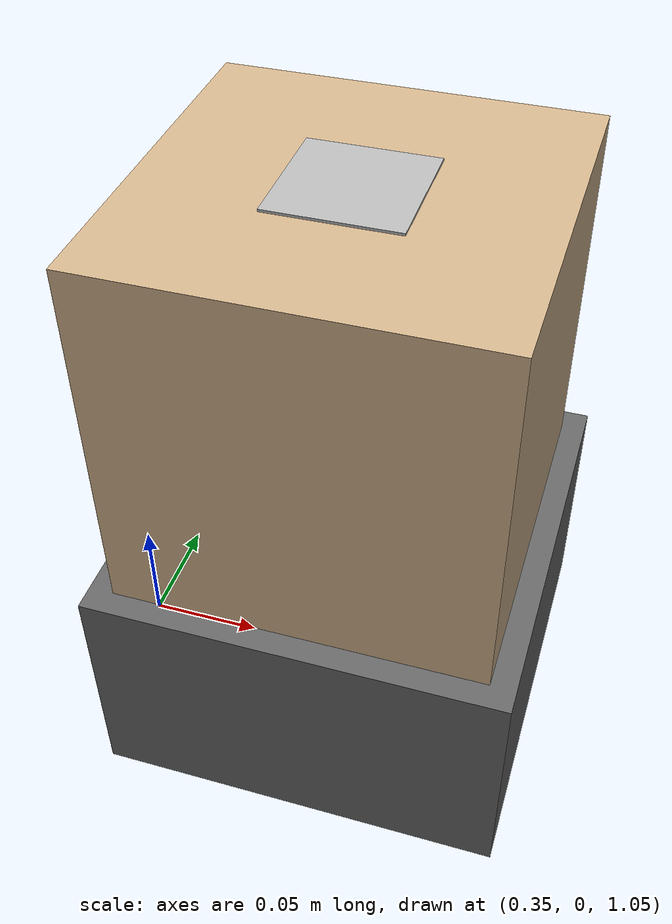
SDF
<?xml version="1.0" ?>
<sdf version="1.4">
  <!-- We use a custom world for the rrbot so that the camera angle is launched correctly -->

  <world name="default">
    <!-- 제어 주기와 물리 시간을 1:1로 유지한다. 무제한 RTF에서는 외부 PD 명령이
         시뮬레이션 시간 기준으로 성기게 도착해 속도 피드백이 지연된다. -->
    <physics type="ode">
      <max_step_size>0.001</max_step_size>
      <real_time_update_rate>1000</real_time_update_rate>
    </physics>
    <include>
      <uri>model://ground_plane</uri>
    </include>

    <!-- Global light source -->
    <include>
      <uri>model://sun</uri>
    </include>

    <!-- Graspable pick object: 15x15x15cm box with a 5cm ArUco id=26 marker facing the head
         camera. dynamic(model.sdf) - held by real friction/impedance grasp, not kinematic attach. -->
    <include>
      <uri>model://aruco_box_26</uri>
      <name>aruco_box_26</name>
      <pose>0.45 0 1.225 0 0 0</pose>
    </include>

    <!-- pick 지점 전용 소형 받침대: 물체 발판(15x15cm)보다 살짝 큰 17x17cm, 상판 z=1.15(기존 테이블
         높이와 동일). 파지 전(LOCATE+APPROACH) 동안만 물체를 떠받치는 용도 - 팔은 물체 바로 위/옆으로만
         접근하므로 이 작은 받침대와 충돌할 일이 없다. -->
    <model name="pick_pedestal">
      <static>true</static>
      <pose>0.45 0 1.10 0 0 0</pose>
      <link name="link">
        <collision name="collision">
          <geometry>
            <box><size>0.17 0.17 0.10</size></box>
          </geometry>
        </collision>
        <visual name="visual">
          <geometry>
            <box><size>0.17 0.17 0.10</size></box>
          </geometry>
          <material>
            <ambient>0.4 0.4 0.4 1</ambient>
            <diffuse>0.4 0.4 0.4 1</diffuse>
          </material>
        </visual>
      </link>
    </model>

    <!-- Focus camera on tall pendulum -->
    <gui fullscreen='0'>
      <camera name='user_camera'>
        <pose>4.927360 -4.376610 3.740080 0.000000 0.275643 2.356190</pose>
        <view_controller>orbit</view_controller>
      </camera>
    </gui>

  </world>
</sdf>

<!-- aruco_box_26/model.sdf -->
<sdf version="1.6">
  <model name="aruco_box_26">
    <static>false</static>
    <link name="link">
      <inertial>
        <mass>0.3</mass>
        <!-- solid cube, side 0.15m: ixx=iyy=izz = (1/6)*m*s^2 -->
        <inertia>
          <ixx>0.001125</ixx>
          <ixy>0</ixy>
          <ixz>0</ixz>
          <iyy>0.001125</iyy>
          <iyz>0</iyz>
          <izz>0.001125</izz>
        </inertia>
      </inertial>

      <collision name="collision">
        <geometry>
          <box>
            <size>0.15 0.15 0.15</size>
          </box>
        </geometry>
        <surface>
          <friction>
            <ode>
              <mu>1.2</mu>
              <mu2>1.2</mu2>
            </ode>
          </friction>
        </surface>
      </collision>

      <visual name="visual_box">
        <geometry>
          <box>
            <size>0.15 0.15 0.15</size>
          </box>
        </geometry>
        <material>
          <ambient>0.82 0.70 0.55 1</ambient>
          <diffuse>0.82 0.70 0.55 1</diffuse>
        </material>
      </visual>

      <visual name="visual_marker_26">
        <pose>0 0 0.0755 0 0 0</pose>
        <geometry>
          <box>
            <size>0.05 0.05 0.001</size>
          </box>
        </geometry>
        <material>
          <script>
            <uri>model://aruco_marker_26/materials/scripts</uri>
            <uri>model://aruco_marker_26/materials/textures</uri>
            <name>Aruco/Marker26</name>
          </script>
        </material>
      </visual>
    </link>
  </model>
</sdf>
